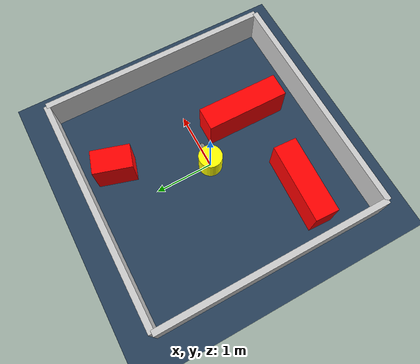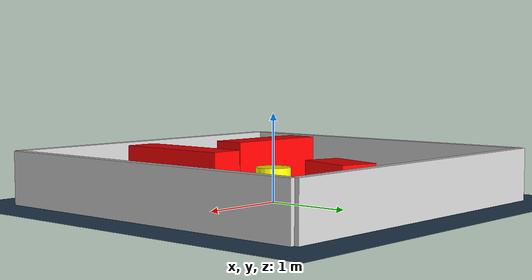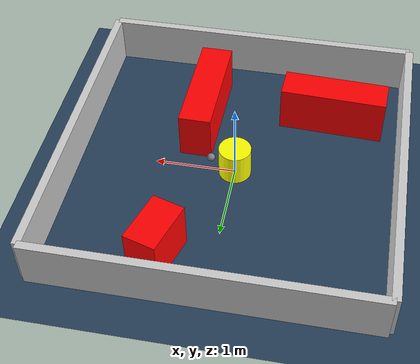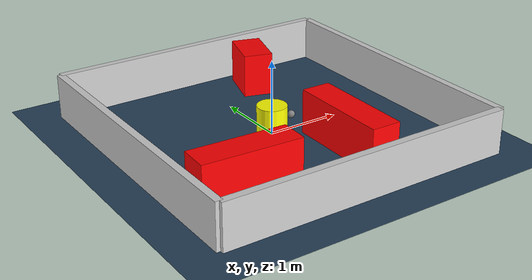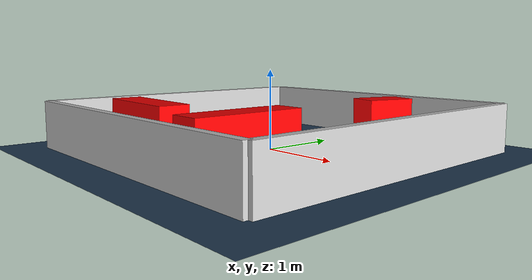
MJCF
<?xml version="1.0" ?>
<mujoco model="generated_environment">
  <option timestep="0.01" integrator="RK4" cone="elliptic"/>
  <default>
    <geom density="1"/>
  </default>
  <asset>
    <texture builtin="gradient" height="3072" rgb1="0.3 0.5 0.7" rgb2="0 0 0" type="skybox" width="512"/>
    <texture builtin="checker" height="300" mark="edge" markrgb="0.8 0.8 0.8" name="groundplane" rgb1="0.2 0.3 0.4" rgb2="0.1 0.2 0.3" type="2d" width="300"/>
    <material name="groundplane" reflectance="0.2" texrepeat="5 5" texture="groundplane" texuniform="true"/>
    <material name="robot" rgba="0.0 1.0 0.0 1"/>
  </asset>
  <worldbody>
    <light dir="0 0 -1" directional="true" pos="0 0 1.5"/>
    <geom condim="4" friction="1.0 0.005 0.001" material="groundplane" name="floor" size="0 0 0.05" type="plane"/>
    <body name="walls">
      <geom name="wall_1" condim="4" pos="-2.0 0.0 0.3" rgba="0.800000011920929 0.800000011920929 0.800000011920929 1.0" size="0.05 2.0 0.3" type="box"/>
      <geom name="wall_2" condim="4" pos="2.0 0.0 0.3" rgba="0.800000011920929 0.800000011920929 0.800000011920929 1.0" size="0.05 2.0 0.3" type="box"/>
      <geom name="wall_3" condim="4" pos="0.0 -2.0 0.3" rgba="0.800000011920929 0.800000011920929 0.800000011920929 1.0" size="2.0 0.05 0.3" type="box"/>
      <geom name="wall_4" condim="4" pos="0.0 2.0 0.3" rgba="0.800000011920929 0.800000011920929 0.800000011920929 1.0" size="2.0 0.05 0.3" type="box"/>
    </body>
    <body name="robot">
      <joint name="joint_x" type="slide" pos="0 0 0" axis="1 0 0"/>
      <joint name="joint_y" type="slide" pos="0 0 0" axis="0 1 0"/>
      <geom name="robot" type="sphere" pos="0.3 0.0 0.2" size="0.05" mass="5." friction="1.0 0.005 0.0001" condim="4" rgba="0.5 0.5 0.5 1.0"/>
      <site name="sensor_ball"/>
    </body>
    <body name="obstacle_movable_1">
      <geom name="obstacle_movable_1" condim="4" pos="0.0 0.0 0.2" euler="0 0 0.0" friction="1.0 0.005 0.001" rgba="1.0 1.0 0.0 1.0" size="0.2 0.2 0.0" type="cylinder" mass="0.1"/>
      <joint type="free"/>
    </body>
    <body name="obstacle_2_static">
      <geom name="obstacle_2_static" condim="4" pos="-1.0987921604580628 -1.0801294708969515 0.3" euler="0 0 177.3559429902488" friction="1.0 0.005 0.001" rgba="1 0 0 1" size="0.6619862785107892 0.2 0.3" type="box"/>
    </body>
    <body name="obstacle_3_static">
      <geom name="obstacle_3_static" condim="4" pos="0.536651118334547 -0.9011517239274816 0.3" euler="0 0 89.49430538853262" friction="1.0 0.005 0.001" rgba="1 0 0 1" size="0.7071998649238245 0.2 0.3" type="box"/>
    </body>
    <body name="obstacle_4_static">
      <geom name="obstacle_4_static" condim="4" pos="0.6341554114425105 1.4408293703489494 0.3" euler="0 0 73.15603961950976" friction="1.0 0.005 0.001" rgba="1 0 0 1" size="0.3242890884826139 0.2 0.3" type="box"/>
    </body>
  </worldbody>
  <actuator>
    <motor name="actuator_x" joint="joint_x" gear="1" ctrlrange="-1 1"/>
    <motor name="actuator_y" joint="joint_y" gear="1" ctrlrange="-1 1"/>
  </actuator>
</mujoco>
